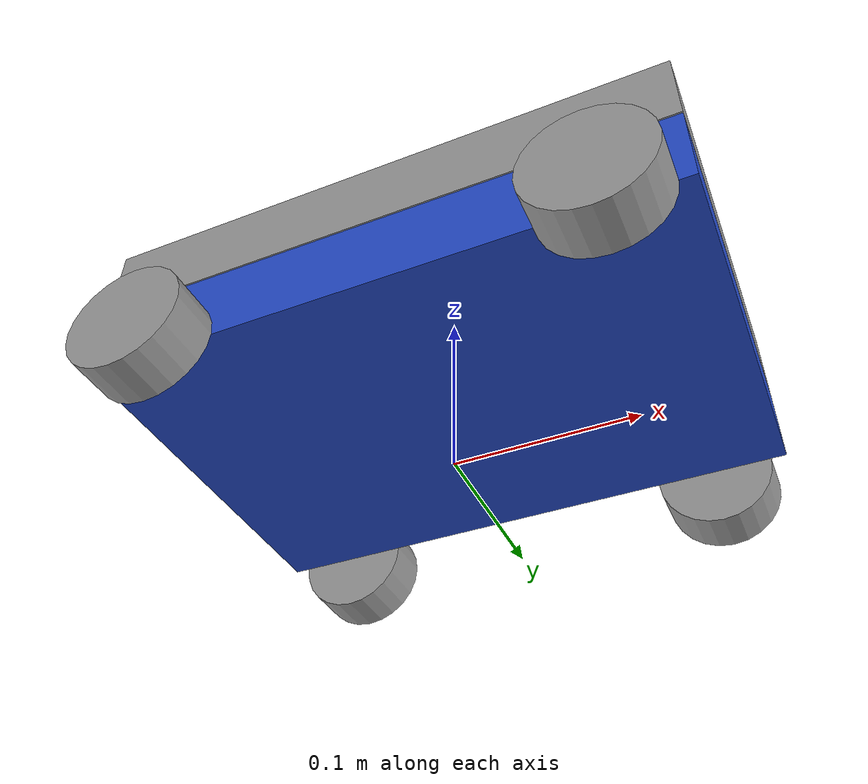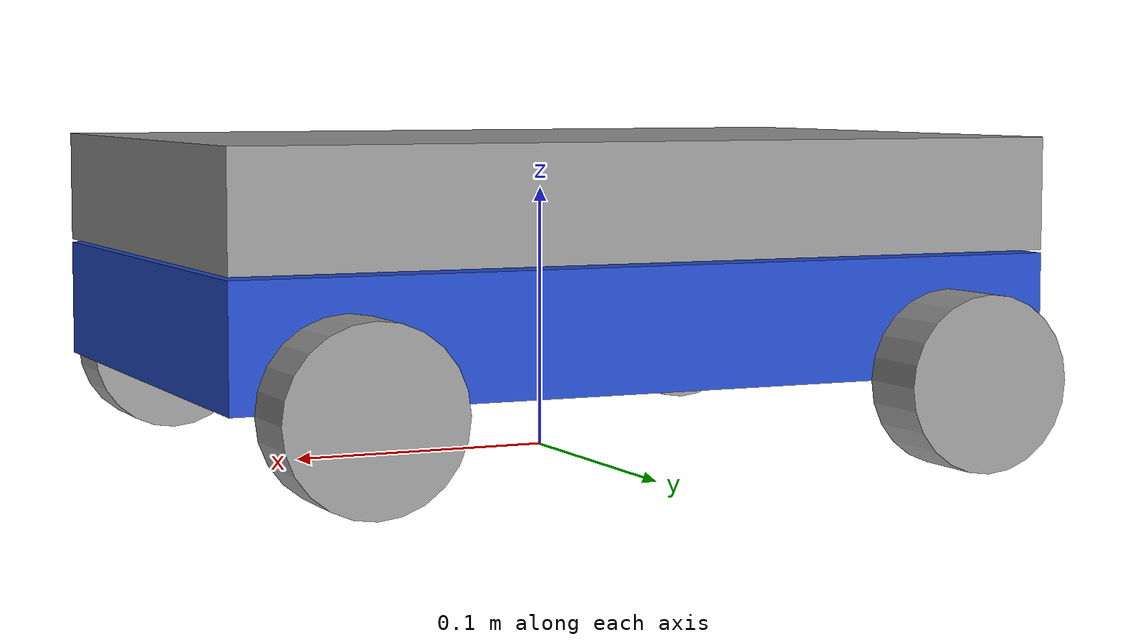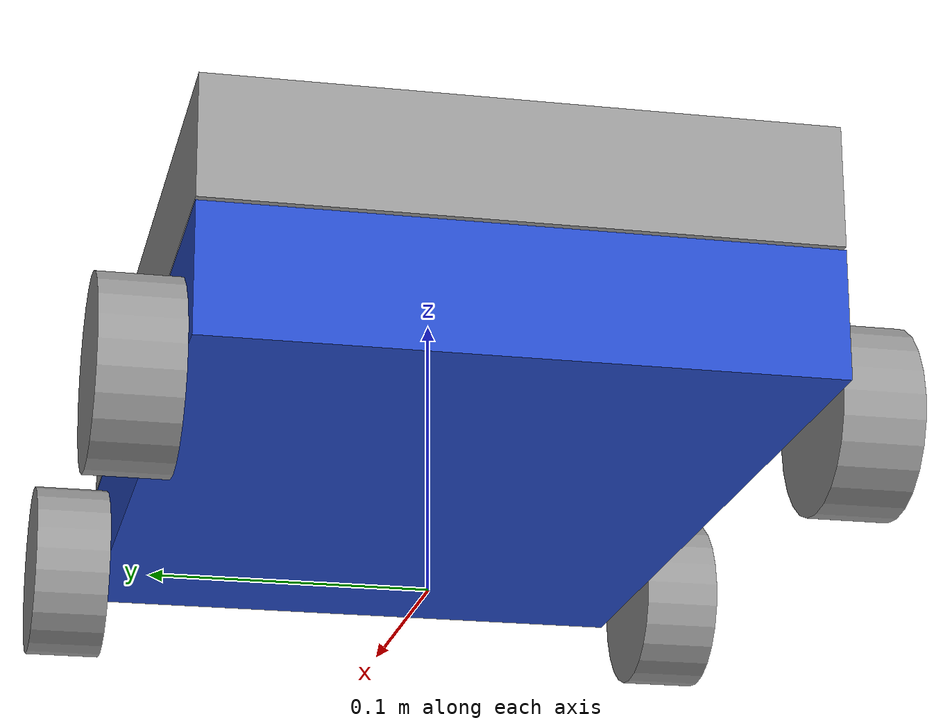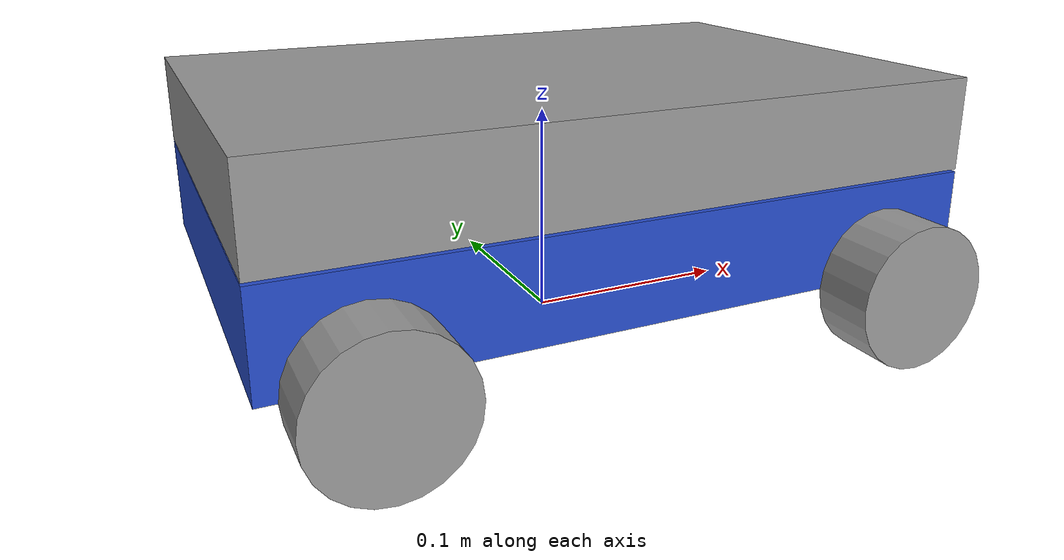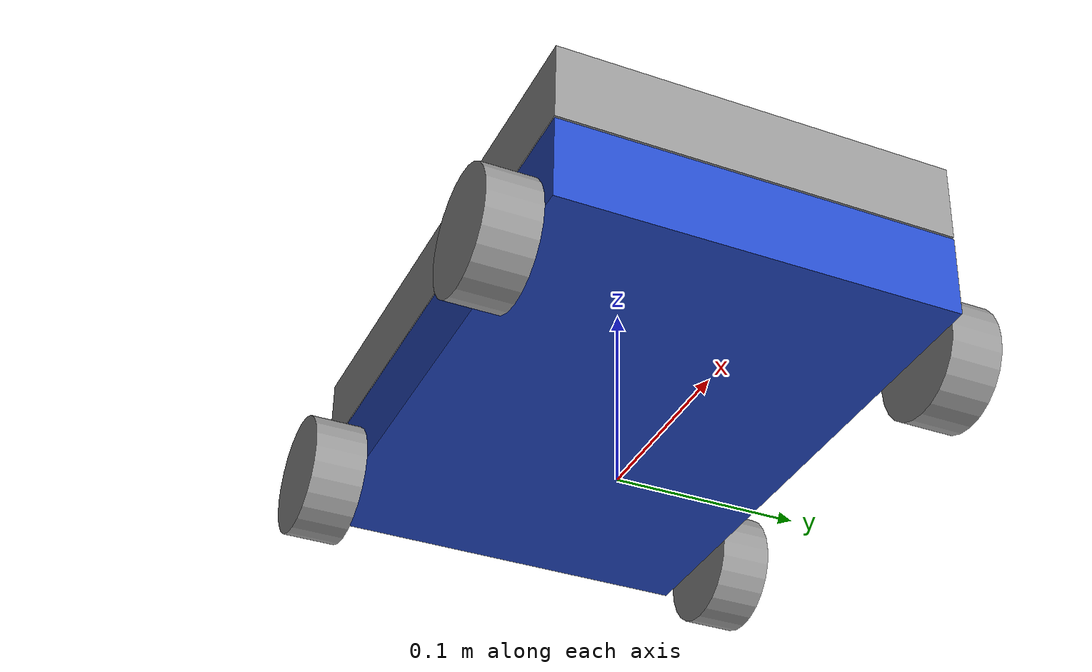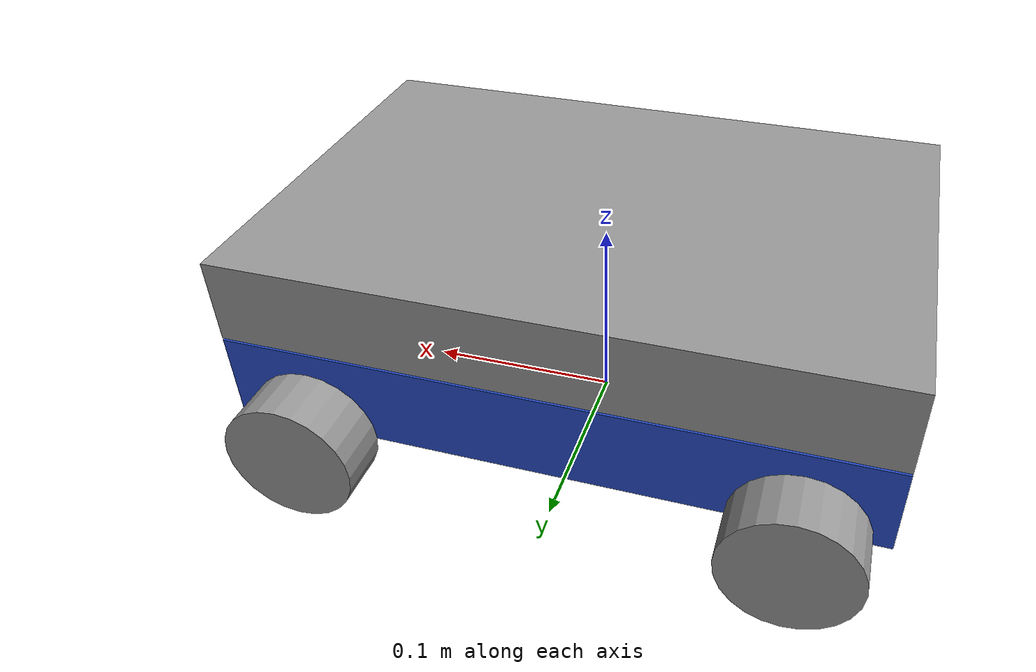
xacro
<?xml version="1.0"?>
<robot xmlns:xacro="http://www.ros.org/wiki/xacro">

    <xacro:property name="base_length" value="0.317" />
    <xacro:property name="base_width" value="0.212" />
    <xacro:property name="base_height" value="0.0446" />
    <xacro:property name="upper_length" value="0.317" />
    <xacro:property name="upper_width" value="0.212" />
    <xacro:property name="upper_height" value="0.0423" />
    <xacro:property name="wheel_radius" value="0.0325" />
    <xacro:property name="wheel_length" value="0.028" />
    <xacro:property name="to_wheel_center" value="0.07" />

    <link name="base_footprint" />

    <link name="base_link">
        <visual>
            <geometry>
                <box size="${base_length} ${base_width} ${base_height}" />
            </geometry>
            <origin xyz="0 0 ${base_height / 2.0}" rpy="0 0 0" />
          <material name="blue" />
        </visual>
        <collision>
            <geometry>
                <box size="${base_length} ${base_width} ${base_height}" />
            </geometry>
            <origin xyz="0 0 ${base_height / 2.0}" rpy="0 0 0" />
        </collision>
        <xacro:box_inertia m="5.0" l="${2*base_length}" w="${2*base_width}" h="${2*base_height}"
                           xyz="0 0 ${base_height / 2.0}" rpy="0 0 0" />
    </link>
    <link name="upper_link">
        <visual>
            <geometry>
                <box size="${upper_length} ${upper_width} ${upper_height}" />
            </geometry>
            <origin xyz="0 0 0" rpy="0 0 0" />
            <material name="grey" />
        </visual>
        <collision>
            <geometry>
                <box size="${base_length} ${base_width} ${base_height}" />
            </geometry>
            <origin xyz="0 0 ${upper_height / 2.0}" rpy="0 0 0" />
        </collision>
        <xacro:box_inertia m="5.0" l="${2*base_length}" w="${2*base_width}" h="${2*base_height}"
                           xyz="0 0 ${base_height / 2.0}" rpy="0 0 0" />
    </link>

    <xacro:macro name="wheel_link" params="prefix">
        <link name="${prefix}_wheel_link">
            <visual>
                <geometry>
                    <cylinder radius="${wheel_radius}" length="${wheel_length}" />
                </geometry>
                <origin xyz="0 0 0" rpy="${pi / 2.0} 0 0" />
                <material name="grey" />
            </visual>
            <collision>
                <geometry>
                    <cylinder radius="${wheel_radius}" length="${wheel_length}" />
                </geometry>
                <origin xyz="0 0 0" rpy="${pi / 2.0} 0 0" />
            </collision>
            <xacro:cylinder_inertia m="1.0" r="${2*wheel_radius}" h="${2*wheel_length}"
                                    xyz="0 0 0" rpy="${pi / 2.0} 0 0" />
        </link>
    </xacro:macro>

    <xacro:wheel_link prefix="front_right" />
    <xacro:wheel_link prefix="front_left" />
    <xacro:wheel_link prefix="back_right" />
    <xacro:wheel_link prefix="back_left" />

    <joint name="base_joint" type="fixed">
        <parent link="base_footprint" />
        <child link="base_link" />
        <origin xyz="0 0 ${wheel_radius}" rpy="0 0 0"/>
    </joint>
    <joint name="upper_joint" type="fixed">
        <parent link="base_link" />
        <child link="upper_link" />
        <origin xyz="0 0 ${base_height+base_height / 2.0}" rpy="0 0 0"/>
    </joint>
    <joint name="front_wheel_right_joint" type="continuous">
        <parent link="base_link" />
        <child link="front_right_wheel_link" />
        <origin xyz="${-base_length / 2.7} ${-(base_width + wheel_length) / 2.0} 0" rpy="0 0 0" />
        <axis xyz="0 1 0" />
    </joint>

    <joint name="front_wheel_left_joint" type="continuous">
        <parent link="base_link" />
        <child link="front_left_wheel_link" />
        <origin xyz="${-base_length / 2.7} ${(base_width + wheel_length) / 2.0} 0" rpy="0 0 0" />
        <axis xyz="0 1 0" />
    </joint>
    <joint name="back_wheel_right_joint" type="continuous">
        <parent link="base_link" />
        <child link="back_right_wheel_link" />
        <origin xyz="${base_length / 2.7} ${-(base_width + wheel_length) / 2.0} 0" rpy="0 0 0" />
        <axis xyz="0 1 0" />
    </joint>

    <joint name="back_wheel_left_joint" type="continuous">
        <parent link="base_link" />
        <child link="back_left_wheel_link" />
        <origin xyz="${base_length / 2.7} ${(base_width + wheel_length) / 2.0} 0" rpy="0 0 0" />
        <axis xyz="0 1 0" />
    </joint>

</robot>
